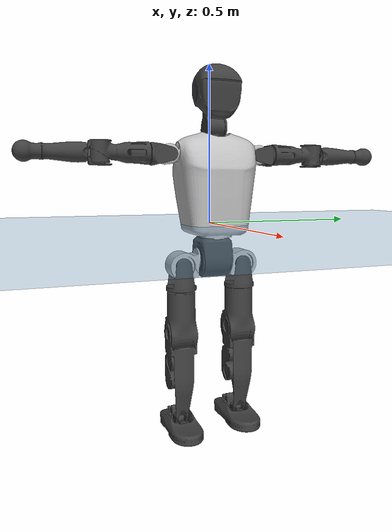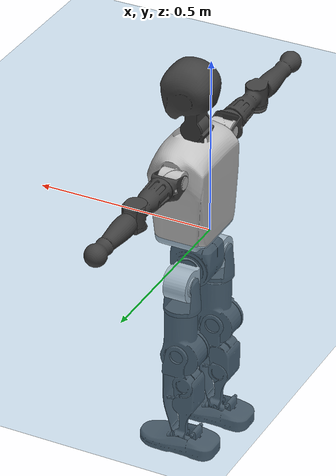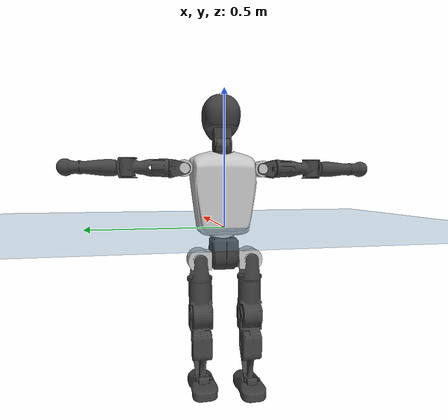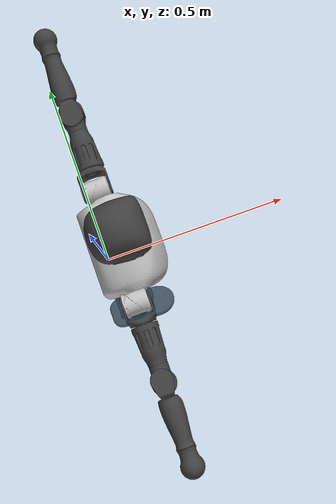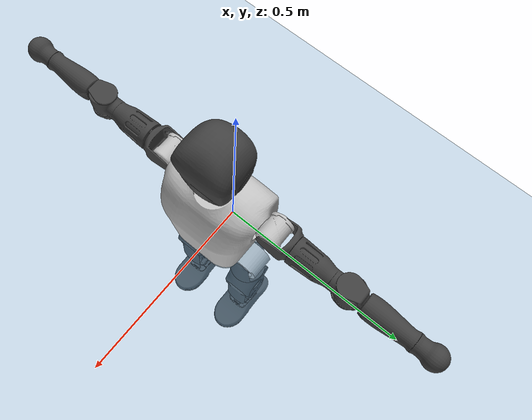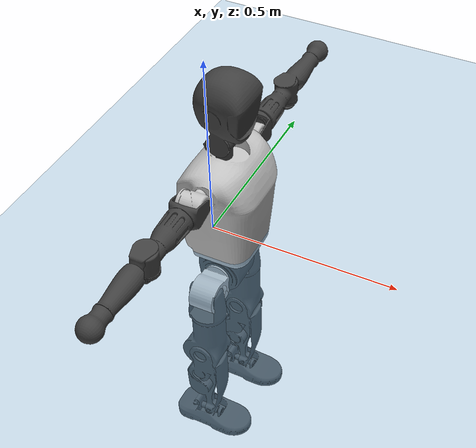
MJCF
<mujoco model="T1">
  <compiler angle="radian" assetdir="assets" balanceinertia="true" inertiafromgeom="false"/>

  <option timestep="0.005" density="1.2" viscosity="2e-05"/>

  <size nkey="1"/>

  <visual>
    <quality shadowsize="8192"/>
    <map shadowclip="0.5"/>
  </visual>

  <default>
    <default class="/">
      <joint armature="0.01" damping="0.01" frictionloss="0.1"/>
      <geom contype="0" conaffinity="0" group="1" solref="-1000 -80"/>
      <site size="0.01 0.005 0.005" group="5"/>
      <general forcelimited="true" biastype="affine" gainprm="25" biasprm="0 -25 -0.6"/>
      <default class="t1">
        <geom rgba="0.25 0.25 0.25 1"/>
        <default class="visual">
          <geom type="mesh" group="2"/>
        </default>
        <default class="collision">
          <geom group="3"/>
        </default>
        <default class="foot">
          <geom size="0.1115 0.05 0.015" type="box" condim="6" group="4" priority="1" solimp="0.015 1 0.015"/>
        </default>
        <default class="reward_collision_sphere">
          <geom group="5" rgba="1 0 0 1"/>
        </default>
      </default>
    </default>
  </default>

  <asset>
    <texture type="skybox" colorspace="auto" name="//unnamed_texture_0" builtin="gradient" rgb1="0.95 0.95 0.95" rgb2="0.95 0.95 0.95" width="100" height="600"/>
    <texture type="2d" colorspace="auto" name="texplane" builtin="checker" rgb1="0.345 0.575 0.748" rgb2="0.345 0.575 0.748" markrgb="1 1 1" width="512" height="512"/>
    <material name="MatPlane" class="/" texture="texplane" texuniform="true" texrepeat="2 2" specular="0.9"/>
    <mesh name="Trunk" class="/" file="Trunk.stl"/>
    <mesh name="H1" class="/" file="H1.stl"/>
    <mesh name="H2" class="/" file="H2.stl"/>
    <mesh name="AL1" class="/" file="AL1.stl"/>
    <mesh name="AL2" class="/" file="AL2.stl"/>
    <mesh name="AL3" class="/" file="AL3.stl"/>
    <mesh name="left_hand_link" class="/" file="left_hand_link.stl"/>
    <mesh name="AR1" class="/" file="AR1.stl"/>
    <mesh name="AR2" class="/" file="AR2.stl"/>
    <mesh name="AR3" class="/" file="AR3.stl"/>
    <mesh name="right_hand_link" class="/" file="right_hand_link.stl"/>
    <mesh name="Waist" class="/" file="Waist.stl"/>
    <mesh name="Hip_Pitch_Left" class="/" file="Hip_Pitch_Left.stl"/>
    <mesh name="Hip_Roll_Left" class="/" file="Hip_Roll_Left.stl"/>
    <mesh name="Hip_Yaw_Left" class="/" file="Hip_Yaw_Left.stl"/>
    <mesh name="Shank_Left" class="/" file="Shank_Left.stl"/>
    <mesh name="Ankle_Cross_Left" class="/" file="Ankle_Cross_Left.stl"/>
    <mesh name="left_foot_link" class="/" file="left_foot_link.stl"/>
    <mesh name="Hip_Pitch_Right" class="/" file="Hip_Pitch_Right.stl"/>
    <mesh name="Hip_Roll_Right" class="/" file="Hip_Roll_Right.stl"/>
    <mesh name="Hip_Yaw_Right" class="/" file="Hip_Yaw_Right.stl"/>
    <mesh name="Shank_Right" class="/" file="Shank_Right.stl"/>
    <mesh name="Ankle_Cross_Right" class="/" file="Ankle_Cross_Right.stl"/>
    <mesh name="right_foot_link" class="/" file="right_foot_link.stl"/>
  </asset>

  <worldbody>
    <geom name="floor" class="/" size="100 100 0.125" type="plane" group="0" material="MatPlane"/>
    <light name="toplight_shadow" class="/" pos="0 0 5" dir="0.0990148 0.0990148 -0.990148" type="directional" ambient="0.04 0.04 0.04" diffuse="0.55 0.55 0.55" specular="0.12 0.12 0.12"/>
    <light name="toplight_fill" class="/" pos="0 0 5" dir="0.0990148 0.0990148 -0.990148" type="directional" castshadow="false" ambient="0.04 0.04 0.04" diffuse="0.3 0.3 0.3" specular="0.08 0.08 0.08"/>
    <body name="trunk" childclass="t1" pos="-0.00105604 -0.00275765 0.00275798" quat="0.999999 -0.000867337 -0.00100293 0.000256486">
      <inertial pos="0.0354487 -0.000859658 0.103759" quat="0.999959 0.00131427 -0.00897574 0.00019656" mass="7.43435" diaginertia="0.0124595 0.0549123 0.0523388"/>
      <joint name="//unnamed_joint_0" type="free" armature="0" damping="0" frictionloss="0"/>
      <geom name="//unnamed_geom_1" class="visual" rgba="0.76 0.76 0.76 1" mesh="Trunk"/>
      <geom name="//unnamed_geom_2" class="collision" size="0.0644871 0.0859828 0.128974" pos="0.039964 0 0.117188" type="box"/>
      <geom name="//unnamed_geom_3" class="reward_collision_sphere" size="0.0988802" pos="0.039964 0 0.0976564"/>
      <geom name="//unnamed_geom_4" class="reward_collision_sphere" size="0.0128974" pos="0.039964 0.0796324 0"/>
      <geom name="//unnamed_geom_5" class="reward_collision_sphere" size="0.0128974" pos="0.039964 -0.0796324 0"/>
      <geom name="//unnamed_geom_6" class="reward_collision_sphere" size="0.0128974" pos="0.039964 0.100243 0.175782"/>
      <geom name="//unnamed_geom_7" class="reward_collision_sphere" size="0.0128974" pos="0.039964 -0.100243 0.175782"/>
      <site name="imu" pos="0.0137914 0.000143815 -0.000964455" size="0.00859828"/>
      <camera name="track" pos="0 -1.8737 0" quat="0.707107 0.707107 0 0" mode="trackcom"/>
      <camera name="ego_camera" pos="0.0812602 0 0.410157" quat="-0.5 -0.5 0.5 0.5"/>
      <body name="H1" pos="0.0437003 0.00249117 0.234296" quat="1 1.93149e-05 4.67158e-05 1.63343e-05">
        <inertial pos="-0.00386814 -0.000445964 0.0588302" quat="0.763847 -0.0200785 0.0085227 0.645028" mass="0.277917" diaginertia="3.04183e-05 0.000162163 0.000129149"/>
        <joint name="AAHead_yaw" pos="0 0 0" axis="0.00310781 0.0013575 0.999994" stiffness="0.00258703" range="-1.59726 1.51476" armature="0.00732108" damping="0.0135952" frictionloss="0.0942546"/>
        <geom name="//unnamed_geom_8" class="visual" mesh="H1"/>
        <body name="H2" pos="0.000601404 -0.000234832 0.0627259" quat="1 -6.36954e-05 1.35136e-05 9.0437e-05">
          <inertial pos="0.00408133 0.000763349 0.0967874" quat="0.987697 0.106932 -0.078107 -0.0831828" mass="0.392009" diaginertia="0.000251895 0.0013602 0.00152482"/>
          <joint name="Head_pitch" pos="0 0 0" axis="0.00497302 -0.999987 0.000700043" range="-1.20602 0.331987" armature="0.00744867" damping="0.00760459" frictionloss="0.0866651"/>
          <geom name="//unnamed_geom_9" class="visual" mesh="H2"/>
          <geom name="//unnamed_geom_10" class="collision" size="0.0687862" pos="0.00666067 0 0.107422"/>
          <geom name="//unnamed_geom_11" class="reward_collision_sphere" size="0.0773845" pos="0.0133213 0 0.0976564"/>
        </body>
      </body>
      <body name="AL1" pos="0.0392238 0.0999668 0.213812" quat="1 7.92569e-05 0.000392939 -9.92098e-06">
        <inertial pos="-0.00287818 0.0420141 -0.000544859" quat="0.50458 0.487979 -0.503988 0.503261" mass="0.33981" diaginertia="0.000179838 0.000953099 0.000268377"/>
        <joint name="Left_Shoulder_Pitch" pos="0 0 0" axis="-0.00978835 0.999915 0.00863398" stiffness="0.00124836" range="-3.29916 1.24618" armature="0.00850425" damping="0.00927511" frictionloss="0.0903844"/>
        <geom name="//unnamed_geom_12" class="visual" rgba="0.76 0.76 0.76 1" mesh="AL1"/>
        <body name="AL2" pos="0.0013263 0.0455314 -0.00164077" quat="1 0.000136626 7.65871e-05 5.57918e-05">
          <inertial pos="0.00219316 0.0331342 -6.84711e-05" quat="0.489459 0.512888 -0.487138 0.509973" mass="0.101692" diaginertia="5.22022e-05 0.000247077 0.000158821"/>
          <joint name="Left_Shoulder_Roll" pos="0 0 0" axis="-0.999986 -0.00211752 0.00482963" range="-1.60264 1.78741" armature="0.00867818" damping="0.00754724" frictionloss="0.090401"/>
          <geom name="//unnamed_geom_13" class="visual" mesh="AL2"/>
          <body name="AL3" pos="0.00347824 0.057001 0.00251458" quat="0.999999 0.0011167 -0.000408388 0.000870792">
            <inertial pos="-0.00261802 0.0793392 9.79527e-05" quat="0.70414 0.710051 -0.000452404 -0.00373881" mass="0.671663" diaginertia="0.00172961 0.00895478 0.00054778"/>
            <joint name="Left_Elbow_Pitch" pos="0 0 0" axis="-0.00289681 -0.999996 0.000246343" stiffness="0.000691547" range="-2.28446 2.2693" armature="0.00765246" damping="0.0120553" frictionloss="0.0898252"/>
            <geom name="//unnamed_geom_14" class="visual" mesh="AL3"/>
            <geom name="//unnamed_geom_15" class="collision" size="0.0257948 0.0644871" pos="0 0.0468426 0" quat="0.707105 0.707108 0 0" type="cylinder"/>
            <geom name="//unnamed_geom_16" class="reward_collision_sphere" size="0.0309538"/>
            <body name="left_hand_link" pos="-0.00131572 0.138152 -0.0013638" quat="0.999999 0.000867286 -0.000892891 0.000375427">
              <inertial pos="-0.000477351 0.100281 0.00310876" quat="0.707061 0.707078 0.00909966 0.0047479" mass="0.201519" diaginertia="0.00107055 0.00571221 0.000178403"/>
              <joint name="Left_Elbow_Yaw" pos="0 0 0" axis="0.000277933 -0.00121683 0.999999" stiffness="0.0112886" range="-2.42268 -0.017131" armature="0.00903392" damping="0.00921168" frictionloss="0.083596"/>
              <geom name="//unnamed_geom_17" class="visual" mesh="left_hand_link"/>
              <geom name="//unnamed_geom_18" class="collision" size="0.0257948 0.0752349" pos="0 0.121791 0" quat="0.707105 0.707108 0 0" type="cylinder"/>
              <geom name="//unnamed_geom_19" class="reward_collision_sphere" size="0.0429914"/>
              <geom name="//unnamed_geom_20" class="reward_collision_sphere" size="0.030094" pos="0 0.103054 0"/>
              <geom name="//unnamed_geom_21" class="reward_collision_sphere" size="0.030094" pos="0 0.201423 0"/>
            </body>
          </body>
        </body>
      </body>
      <body name="AR1" pos="0.0399337 -0.101065 0.212247" quat="1 -0.000320429 0.000580436 9.55666e-05">
        <inertial pos="-0.000691115 -0.0450373 0.00226531" quat="0.506965 0.494532 -0.500492 0.497928" mass="0.328079" diaginertia="0.000173982 0.000880317 0.000252635"/>
        <joint name="Right_Shoulder_Pitch" pos="0 0 0" axis="-0.00118134 -0.999937 0.0111356" stiffness="0.00854545" range="-1.16982 3.32166" armature="0.00887654" damping="0.00655884" frictionloss="0.0979685"/>
        <geom name="//unnamed_geom_22" class="visual" rgba="0.76 0.76 0.76 1" mesh="AR1"/>
        <body name="AR2" pos="-0.0002683 -0.0451549 -0.000871399" quat="1 -0.000959547 0.00016426 0.00020232">
          <inertial pos="0.000141902 -0.0350406 -0.00179008" quat="0.50879 0.496387 -0.507992 0.486495" mass="0.10297" diaginertia="5.405e-05 0.000255901 0.000156715"/>
          <joint name="Right_Shoulder_Roll" pos="0 0 0" axis="-0.999836 0.014012 -0.0114433" range="-1.72761 1.57374" armature="0.00755674" damping="0.00563656" frictionloss="0.0905454"/>
          <geom name="//unnamed_geom_23" class="visual" mesh="AR2"/>
          <body name="AR3" pos="0.000552792 -0.0595787 0.00223943" quat="0.999999 3.04893e-05 -0.000399229 0.00130316">
            <inertial pos="0.00176558 -0.0807142 0.00277187" quat="0.707086 0.707124 3.80106e-05 0.00199775" mass="0.627593" diaginertia="0.00157951 0.00893059 0.000527546"/>
            <joint name="Right_Elbow_Pitch" pos="0 0 0" axis="7.08523e-05 1 -0.000192528" range="-2.25648 2.25605" armature="0.00843849" damping="0.00944538" frictionloss="0.0942899"/>
            <geom name="//unnamed_geom_24" class="visual" mesh="AR3"/>
            <geom name="//unnamed_geom_25" class="collision" size="0.0257948 0.0644871" pos="0 -0.0468426 0" quat="0.707105 0.707108 0 0" type="cylinder"/>
            <geom name="//unnamed_geom_26" class="reward_collision_sphere" size="0.0309538"/>
            <body name="right_hand_link" pos="-0.00307092 -0.139107 -0.00164172" quat="1 -3.7043e-05 2.50571e-05 5.78162e-05">
              <inertial pos="-0.000308109 -0.102343 0.00165201" quat="0.70537 0.708839 -1.63634e-05 0.000768467" mass="0.206548" diaginertia="0.00110153 0.00602786 0.00019267"/>
              <joint name="Right_Elbow_Yaw" pos="0 0 0" axis="0.00478932 0.0081273 0.999956" range="-0.00313602 2.43687" armature="0.00792303" damping="0.00506429" frictionloss="0.0953531"/>
              <geom name="//unnamed_geom_27" class="visual" mesh="right_hand_link"/>
              <geom name="//unnamed_geom_28" class="collision" size="0.0257948 0.0752349" pos="0 -0.121791 0" quat="0.707105 0.707108 0 0" type="cylinder"/>
              <geom name="//unnamed_geom_29" class="reward_collision_sphere" size="0.0429914"/>
              <geom name="//unnamed_geom_30" class="reward_collision_sphere" size="0.030094" pos="0 -0.103054 0"/>
              <geom name="//unnamed_geom_31" class="reward_collision_sphere" size="0.030094" pos="0 -0.201423 0"/>
            </body>
          </body>
        </body>
      </body>
      <body name="Waist" pos="0.0403107 -0.00265836 -0.111822" quat="0.999999 0.000414536 -0.00142252 0.000409015">
        <inertial pos="-0.00126604 0.00215681 0.00459775" quat="0.981972 0.00792935 -0.188856 0.00089125" mass="1.58512" diaginertia="0.000707871 0.00381163 0.00423069"/>
        <joint name="Waist" pos="0 0 0" axis="-0.0111106 -0.00410735 0.99993" stiffness="0.00576779" range="-1.56804 1.56011" armature="0.00858189" damping="0.0162664" frictionloss="0.0880428"/>
        <geom name="//unnamed_geom_32" class="visual" mesh="Waist"/>
        <body name="Hip_Pitch_Left" pos="-0.000379639 0.0960829 0.00147503" quat="1 5.83073e-06 -6.06607e-05 1.81323e-05">
          <inertial pos="0.00315909 -0.00767406 -0.0180449" quat="0.973739 0.227515 0.00416464 0.00717404" mass="0.660444" diaginertia="0.000235358 0.00112113 0.00114427"/>
          <joint name="Left_Hip_Pitch" pos="0 0 0" axis="-0.0105247 0.999943 0.00195892" stiffness="0.0137688" range="-1.77749 1.58757" armature="0.00952797" damping="0.00945718" frictionloss="0.0847426"/>
          <geom name="//unnamed_geom_33" class="visual" rgba="0.76 0.76 0.76 1" mesh="Hip_Pitch_Left"/>
          <body name="Hip_Roll_Left" pos="-0.00135824 -0.00221329 -0.020366" quat="1 -1.59601e-05 -8.08648e-05 -0.000329745">
            <inertial pos="0.00043227 -0.0021508 -0.0540692" quat="0.706872 -0.00627808 -0.0063959 0.707284" mass="0.235654" diaginertia="0.000213334 0.00102752 0.000453064"/>
            <joint name="Left_Hip_Roll" pos="0 0 0" axis="-0.999974 0.00715195 0.000335715" range="-1.55187 0.2413" armature="0.0083227" damping="0.00338672" frictionloss="0.097964"/>
            <geom name="//unnamed_geom_34" class="visual" mesh="Hip_Roll_Left"/>
            <geom name="//unnamed_geom_35" class="reward_collision_sphere" size="0.0472905"/>
            <body name="Hip_Yaw_Left" pos="0.00260435 -0.00269991 -0.0778463" quat="0.999999 -0.000564596 -0.00021223 0.00100164">
              <inertial pos="-0.00532835 -0.000589656 -0.0900133" quat="0.696636 -0.0317039 -0.0321539 0.716003" mass="1.36062" diaginertia="0.00326172 0.0177898 0.00223403"/>
              <joint name="Left_Hip_Yaw" pos="0 0 0" axis="0.00368877 -0.00431566 -0.999984" range="-1.04764 1.02778" armature="0.0084562" damping="0.00949663" frictionloss="0.0873045"/>
              <geom name="//unnamed_geom_36" class="visual" mesh="Hip_Yaw_Left"/>
              <geom name="//unnamed_geom_37" class="collision" size="0.0429914 0.0687862" type="cylinder"/>
              <body name="Shank_Left" pos="-0.00739935 -0.000453956 -0.130077" quat="1 -2.8446e-05 -7.61984e-05 8.71405e-05">
                <inertial pos="-0.00674338 0.00112112 -0.121918" quat="0.996761 0.00433108 -0.0253802 0.0761823" mass="1.08397" diaginertia="0.00465838 0.0240273 0.00157967"/>
                <joint name="Left_Knee_Pitch" pos="0 0 0" axis="-0.000694275 0.999996 0.00290953" range="-0.00527165 2.29011" armature="0.00988542" damping="0" frictionloss="0.087623"/>
                <geom name="//unnamed_geom_38" class="visual" mesh="Shank_Left"/>
                <geom name="//unnamed_geom_39" class="collision" size="0.0429914 0.0644871" pos="0 0 -0.117188" type="cylinder"/>
                <geom name="//unnamed_geom_40" class="reward_collision_sphere" size="0.0558888"/>
                <body name="Ankle_Cross_Left" pos="0.00282689 -0.00023644 -0.273353" quat="1 -0.000567174 -0.000623516 -0.000523205">
                  <inertial pos="-0.00435604 -0.000991733 -0.00574341" quat="0.443208 0.550954 0.551056 0.443117" mass="0.0460348" diaginertia="3.71478e-06 1.85925e-05 1.02677e-05"/>
                  <joint name="Left_Ankle_Pitch" pos="0 0 0" axis="0.000283921 0.999998 0.00193066" range="-0.873318 0.354672" armature="0.00946928" damping="0.0225586" frictionloss="0.084649"/>
                  <geom name="//unnamed_geom_41" class="visual" mesh="Ankle_Cross_Left"/>
                  <body name="left_foot_link" pos="-0.0015842 -0.00311881 -0.00961571" quat="1 -0.000759909 -0.00050518 0.000242645">
                    <inertial pos="-0.00296413 -0.00191283 -0.00778823" quat="0.00599398 0.629669 0.00232383 0.776837" mass="0.448476" diaginertia="0.00035504 0.00170964 0.00200187"/>
                    <joint name="Left_Ankle_Roll" pos="0 0 0" axis="-0.999945 0.00798718 -0.00677479" range="-0.436213 0.491438" armature="0.00863668" damping="0" frictionloss="0.0880155"/>
                    <geom name="//unnamed_geom_42" class="visual" mesh="left_foot_link"/>
                    <geom name="left_foot" class="foot" size="0.107997 0.0382432 0.0139132" pos="0.00666067 0 -0.0146485"/>
                    <geom name="//unnamed_geom_44" class="reward_collision_sphere" size="0.044711" pos="0.00666067 0 -0.0146485"/>
                    <geom name="//unnamed_geom_45" class="reward_collision_sphere" size="0.0257948" pos="0.0632764 -0.0215476 -0.0146485"/>
                    <geom name="//unnamed_geom_46" class="reward_collision_sphere" size="0.0257948" pos="-0.0466247 -0.0215476 -0.0146485"/>
                    <site name="left_foot" class="foot" pos="0.00666067 0 -0.0146485" size="0.00859828"/>
                  </body>
                </body>
              </body>
            </body>
          </body>
        </body>
        <body name="Hip_Pitch_Right" pos="-0.00133422 -0.101431 2.23062e-05" quat="1 0.000277536 -0.000378935 0.000488398">
          <inertial pos="-0.00221697 0.00435916 -0.0179435" quat="0.973475 -0.228281 0.014768 -0.004076" mass="0.647968" diaginertia="0.000244689 0.00108906 0.0011097"/>
          <joint name="Right_Hip_Pitch" pos="0 0 0" axis="-0.000333451 -0.999994 0.003386" range="-1.56215 1.74666" armature="0.00818012" damping="0" frictionloss="0.0909042"/>
          <geom name="//unnamed_geom_47" class="visual" rgba="0.76 0.76 0.76 1" mesh="Hip_Pitch_Right"/>
          <body name="Hip_Roll_Right" pos="-0.00314224 -0.00110725 -0.0197352" quat="0.999999 0.000160983 0.000727806 -0.00106621">
            <inertial pos="-0.00163382 0.00019939 -0.0496306" quat="0.706421 0.00734841 -0.00241478 0.70775" mass="0.251805" diaginertia="0.000238494 0.00110775 0.000463573"/>
            <joint name="Right_Hip_Roll" pos="0 0 0" axis="-0.999992 -0.00386576 -0.000286192" stiffness="0.00310272" range="-0.179776 1.5683" armature="0.00850144" damping="0.00819263" frictionloss="0.0973771"/>
            <geom name="//unnamed_geom_48" class="visual" mesh="Hip_Roll_Right"/>
            <geom name="//unnamed_geom_49" class="reward_collision_sphere" size="0.0472905"/>
            <body name="Hip_Yaw_Right" pos="-0.0011686 0.000100017 -0.083825" quat="1 0.000137376 -5.96661e-05 9.91181e-05">
              <inertial pos="-0.00372613 -0.000335853 -0.0848813" quat="0.715105 -0.0322324 -0.0333154 0.697478" mass="1.40195" diaginertia="0.0035137 0.0185461 0.00239176"/>
              <joint name="Right_Hip_Yaw" pos="0 0 0" axis="-0.000475622 -0.00493089 -0.999988" range="-1.01489 0.989905" armature="0.00813681" damping="0.0186176" frictionloss="0.0834"/>
              <geom name="//unnamed_geom_50" class="visual" mesh="Hip_Yaw_Right"/>
              <geom name="//unnamed_geom_51" class="collision" size="0.0429914 0.0687862" type="cylinder"/>
              <body name="Shank_Right" pos="-0.0112625 -0.00112141 -0.133406" quat="1 6.57788e-05 0.000299087 -0.000184872">
                <inertial pos="-0.00344214 -0.00301425 -0.119932" quat="0.999625 -0.00714705 -0.0171507 -0.020102" mass="1.17843" diaginertia="0.00456783 0.0252398 0.00168955"/>
                <joint name="Right_Knee_Pitch" pos="0 0 0" axis="0.00314385 -0.999971 -0.00692531" range="-2.39295 0.00415015" armature="0.00874852" damping="0.00817668" frictionloss="0.0906108"/>
                <geom name="//unnamed_geom_52" class="visual" mesh="Shank_Right"/>
                <geom name="//unnamed_geom_53" class="collision" size="0.0429914 0.0644871" pos="0 0 -0.117188" type="cylinder"/>
                <geom name="//unnamed_geom_54" class="reward_collision_sphere" size="0.0558888"/>
                <body name="Ankle_Cross_Right" pos="-0.0013807 -0.000859806 -0.276787" quat="1 4.74702e-05 0.000125773 -1.40659e-05">
                  <inertial pos="-0.0023 0.00244527 -0.00792112" quat="0.442936 0.550943 0.551085 0.443367" mass="0.0449382" diaginertia="3.92155e-06 1.79083e-05 1.03909e-05"/>
                  <joint name="Right_Ankle_Pitch" pos="0 0 0" axis="-0.0102548 -0.999916 0.00791826" range="-0.301189 0.8136" armature="0.00860226" damping="0.0175357" frictionloss="0.0869612"/>
                  <geom name="//unnamed_geom_55" class="visual" mesh="Ankle_Cross_Right"/>
                  <body name="right_foot_link" pos="0.00202417 0.00178327 -0.0140745" quat="1 8.11517e-05 5.76736e-05 -0.000212558">
                    <inertial pos="2.59778e-05 0.00268195 -0.0110097" quat="0.00251282 0.611633 -0.0071869 0.791105" mass="0.416878" diaginertia="0.000340924 0.00168525 0.00184199"/>
                    <joint name="Right_Ankle_Roll" pos="0 0 0" axis="-0.999999 -0.00158552 -0.000624707" range="-0.495001 0.489535" armature="0.00786915" damping="0.0017576" frictionloss="0.0976061"/>
                    <geom name="//unnamed_geom_56" class="visual" mesh="right_foot_link"/>
                    <geom name="right_foot" class="foot" size="0.0986153 0.0383334 0.0140799" pos="0.00666067 0 -0.0146485"/>
                    <geom name="//unnamed_geom_58" class="reward_collision_sphere" size="0.0343931"/>
                    <geom name="//unnamed_geom_59" class="reward_collision_sphere" size="0.0257948" pos="0.00666067 0 -0.0146485"/>
                    <geom name="//unnamed_geom_60" class="reward_collision_sphere" size="0.0257948" pos="0.0632764 0.0215476 -0.0146485"/>
                    <geom name="//unnamed_geom_61" class="reward_collision_sphere" size="0.0257948" pos="-0.0466247 0.0215476 -0.0146485"/>
                    <site name="right_foot" class="foot" pos="0.00666067 0 -0.0146485" size="0.00859828"/>
                  </body>
                </body>
              </body>
            </body>
          </body>
        </body>
      </body>
    </body>
  </worldbody>

  <contact>
    <pair class="/" geom1="floor" geom2="left_foot" name="//unnamed_contact_0"/>
    <pair class="/" geom1="floor" geom2="right_foot" name="//unnamed_contact_1"/>
  </contact>

  <actuator>
    <general name="AAHead_yaw" class="/" joint="AAHead_yaw" forcerange="-5.95382 5.95382" gainprm="20.6058" biasprm="0 -20.6058 -0.532738"/>
    <general name="Head_pitch" class="/" joint="Head_pitch" forcerange="-6.06845 6.06845" gainprm="20.6058" biasprm="0 -20.6058 -0.532738"/>
    <general name="Left_Shoulder_Pitch" class="/" joint="Left_Shoulder_Pitch" forcerange="-14.2939 14.2939" gainprm="20.6058" biasprm="0 -20.6058 -0.532738"/>
    <general name="Left_Shoulder_Roll" class="/" joint="Left_Shoulder_Roll" forcerange="-13.8446 13.8446" gainprm="20.6058" biasprm="0 -20.6058 -0.532738"/>
    <general name="Left_Elbow_Pitch" class="/" joint="Left_Elbow_Pitch" forcerange="-17.0428 17.0428" gainprm="20.6058" biasprm="0 -20.6058 -0.532738"/>
    <general name="Left_Elbow_Yaw" class="/" joint="Left_Elbow_Yaw" forcerange="-15.3067 15.3067" gainprm="20.6058" biasprm="0 -20.6058 -0.532738"/>
    <general name="Right_Shoulder_Pitch" class="/" joint="Right_Shoulder_Pitch" forcerange="-15.9679 15.9679" gainprm="20.6058" biasprm="0 -20.6058 -0.532738"/>
    <general name="Right_Shoulder_Roll" class="/" joint="Right_Shoulder_Roll" forcerange="-17.0532 17.0532" gainprm="20.6058" biasprm="0 -20.6058 -0.532738"/>
    <general name="Right_Elbow_Pitch" class="/" joint="Right_Elbow_Pitch" forcerange="-15.0058 15.0058" gainprm="20.6058" biasprm="0 -20.6058 -0.532738"/>
    <general name="Right_Elbow_Yaw" class="/" joint="Right_Elbow_Yaw" forcerange="-15.4712 15.4712" gainprm="20.6058" biasprm="0 -20.6058 -0.532738"/>
    <general name="Waist" class="/" joint="Waist" forcerange="-23.2079 23.2079" gainprm="20.6058" biasprm="0 -20.6058 -0.532738"/>
    <general name="Left_Hip_Pitch" class="/" joint="Left_Hip_Pitch" forcerange="-37.0146 37.0146" gainprm="20.6058" biasprm="0 -20.6058 -0.532738"/>
    <general name="Left_Hip_Roll" class="/" joint="Left_Hip_Roll" forcerange="-26.6996 26.6996" gainprm="20.6058" biasprm="0 -20.6058 -0.532738"/>
    <general name="Left_Hip_Yaw" class="/" joint="Left_Hip_Yaw" forcerange="-23.6603 23.6603" gainprm="20.6058" biasprm="0 -20.6058 -0.532738"/>
    <general name="Left_Knee_Pitch" class="/" joint="Left_Knee_Pitch" forcerange="-50.1555 50.1555" gainprm="20.6058" biasprm="0 -20.6058 -0.532738"/>
    <general name="Left_Ankle_Pitch" class="/" joint="Left_Ankle_Pitch" forcerange="-17.0806 17.0806" gainprm="20.6058" biasprm="0 -20.6058 -0.532738"/>
    <general name="Left_Ankle_Roll" class="/" joint="Left_Ankle_Roll" forcerange="-13.1156 13.1156" gainprm="20.6058" biasprm="0 -20.6058 -0.532738"/>
    <general name="Right_Hip_Pitch" class="/" joint="Right_Hip_Pitch" forcerange="-42.6136 42.6136" gainprm="20.6058" biasprm="0 -20.6058 -0.532738"/>
    <general name="Right_Hip_Roll" class="/" joint="Right_Hip_Roll" forcerange="-27.7961 27.7961" gainprm="20.6058" biasprm="0 -20.6058 -0.532738"/>
    <general name="Right_Hip_Yaw" class="/" joint="Right_Hip_Yaw" forcerange="-25.4015 25.4015" gainprm="20.6058" biasprm="0 -20.6058 -0.532738"/>
    <general name="Right_Knee_Pitch" class="/" joint="Right_Knee_Pitch" forcerange="-55.2946 55.2946" gainprm="20.6058" biasprm="0 -20.6058 -0.532738"/>
    <general name="Right_Ankle_Pitch" class="/" joint="Right_Ankle_Pitch" forcerange="-15.7875 15.7875" gainprm="20.6058" biasprm="0 -20.6058 -0.532738"/>
    <general name="Right_Ankle_Roll" class="/" joint="Right_Ankle_Roll" forcerange="-14.2571 14.2571" gainprm="20.6058" biasprm="0 -20.6058 -0.532738"/>
  </actuator>

  <sensor>
    <gyro site="imu" name="imu_angular_velocity"/>
    <velocimeter site="imu" name="imu_linear_velocity"/>
    <framelinvel objtype="site" objname="left_foot" name="left_foot_global_linear_velocity"/>
    <framelinvel objtype="site" objname="right_foot" name="right_foot_global_linear_velocity"/>
  </sensor>

  <keyframe>
    <key name="home" qpos="0 0 0.6385 1 0 0 0 0 0 0 1.4 0 -0.4 0 -1.4 0 0.4 0 -0.4 0 0 0.8 -0.4 0 0.4 0 0 -0.8 0.4 0"/>
  </keyframe>
</mujoco>
